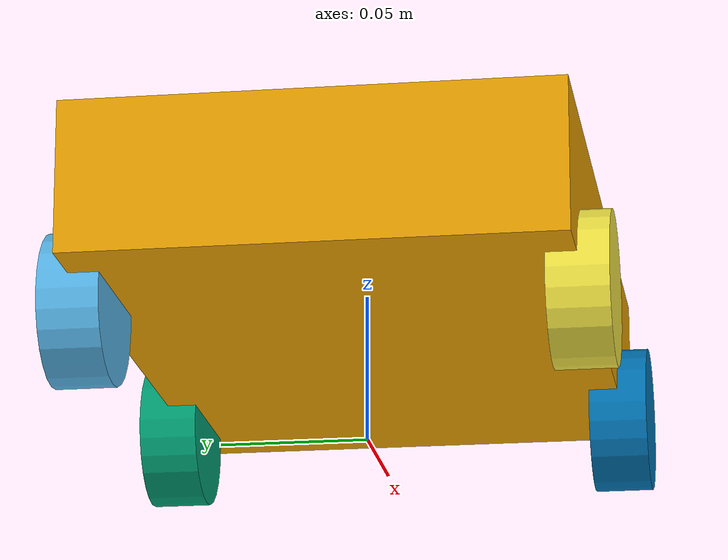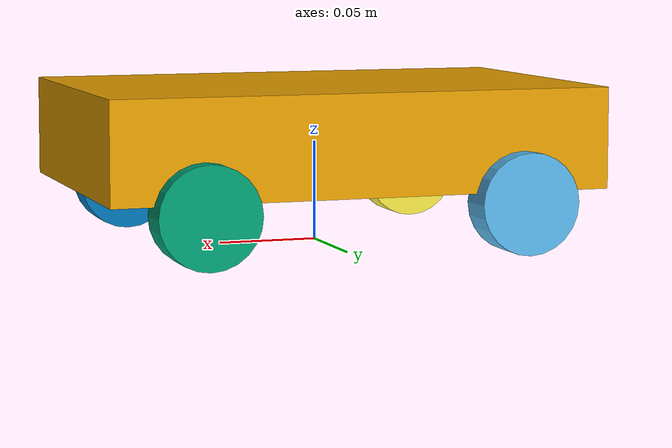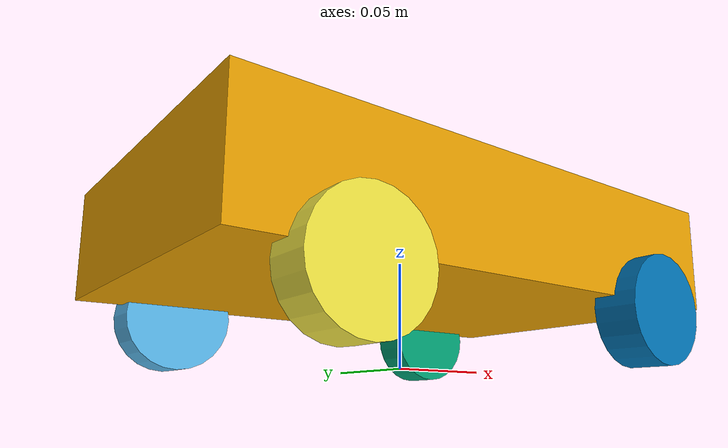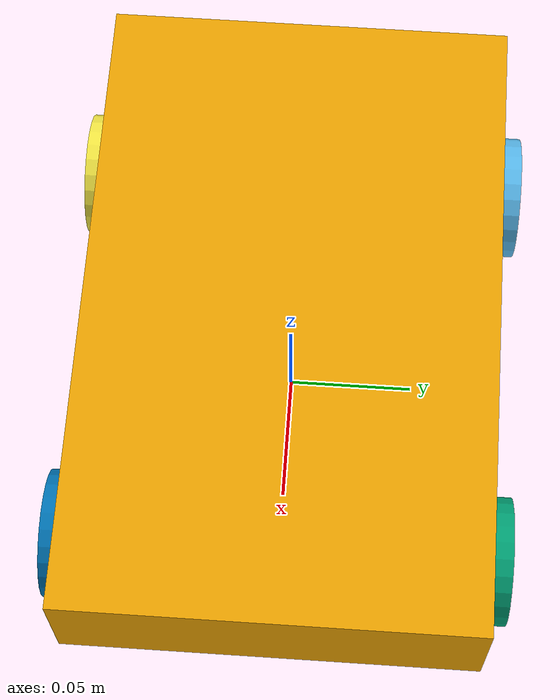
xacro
<robot name="car">
    <!--body-->
    <link name="base_link">
        <visual>
            <origin rpy="0 0 0" xyz="0 0 0.055"/>
            <geometry>
                <box size="0.25 0.16 0.05"/>
            </geometry>
        </visual>
        <inertial>
            <origin xyz="0 0 0.055"/>
            <mass value="100" />
            <inertia ixx="0.1" ixy="0.1" ixz="0.1" iyy="0.1" iyz="0.1" izz="0.1"/>
        </inertial>
        <collision>
            <origin rpy="0 0 0" xyz="0 0 0.055"/>
            <geometry>
                <box size="0.25 0.16 0.05" />
            </geometry>
        </collision>
    </link>
    <!--wheel-->
    <link name="left_back_wheel">
        <visual>
            <geometry>
                <cylinder length="0.02" radius="0.025"/>
            </geometry>
        </visual>
        <inertial>
            <origin xyz="0 0 0"/>
            <mass value="1.0" />
            <inertia ixx="0.1" ixy="0.1" ixz="0.1" iyy="0.1" iyz="0.1" izz="0.1"/>
        </inertial>
        <collision>
            <geometry>
                <cylinder length="0.02" radius="0.025"/>
            </geometry>
        </collision>
    </link>
    <joint name="left_back_wheel_joint" type="continuous">
        <axis xyz="0 0 1"/>
        <parent link="base_link"/>
        <child link="left_back_wheel"/>
        <origin rpy="0 1.57075 1.57075" xyz="-0.08 0.08 0.025"/>
    </joint>

    <link name="left_front_wheel">
        <visual>
            <geometry>
                <cylinder length="0.02" radius="0.025"/>
            </geometry>
        </visual>
        <inertial>
            <origin xyz="0 0 0"/>
            <mass value="1.0" />
            <inertia ixx="0.1" ixy="0.1" ixz="0.1" iyy="0.1" iyz="0.1" izz="0.1"/>
        </inertial>
        <collision>
            <geometry>
                <cylinder length="0.02" radius="0.025"/>
            </geometry>
        </collision>
    </link>
    <joint name="left_front_wheel_joint" type="continuous">
        <axis xyz="0 0 1"/>
        <parent link="base_link"/>
        <child link="left_front_wheel"/>
        <origin rpy="0 1.57075 1.57075" xyz="0.08 0.08 0.025"/>
    </joint>

    <link name="right_back_wheel">
        <visual>
            <geometry>
                <cylinder length="0.02" radius="0.025"/>
            </geometry>
        </visual>
        <inertial>
            <origin xyz="0 0 0"/>
            <mass value="1.0" />
            <inertia ixx="0.1" ixy="0.1" ixz="0.1" iyy="0.1" iyz="0.1" izz="0.1"/>
        </inertial>
        <collision>
            <geometry>
                <cylinder length="0.02" radius="0.025"/>
            </geometry>
        </collision>
    </link>
    <joint name="right_back_wheel_joint" type="continuous">
        <axis xyz="0 0 1"/>
        <parent link="base_link"/>
        <child link="right_back_wheel"/>
        <origin rpy="0 1.57075 1.57075" xyz="-0.08 -0.08 0.025"/>
    </joint>

    <link name="right_front_wheel">
        <visual>
            <geometry>
                <cylinder length="0.02" radius="0.025"/>
            </geometry>
        </visual>
        <inertial>
            <origin xyz="0 0 0"/>
            <mass value="1.0" />
            <inertia ixx="0.1" ixy="0.1" ixz="0.1" iyy="0.1" iyz="0.1" izz="0.1"/>
        </inertial>
        <collision>
            <geometry>
                <cylinder length="0.02" radius="0.025"/>
            </geometry>
        </collision>
    </link>
    <joint name="right_front_wheel_joint" type="continuous">
        <axis xyz="0 0 1"/>
        <parent link="base_link"/>
        <child link="right_front_wheel"/>
        <origin rpy="0 1.57075 1.57075" xyz="0.08 -0.08 0.025"/>
    </joint>

    <transmission name="left_front_wheel_transmission">
        <type>transmission_interface/SimpleTransmission</type>
        <joint name="left_front_wheel_joint">
            <hardwareInterface>hardware_interface/VelocityJointInterface</hardwareInterface>
        </joint>
        <actuator name="left_front_wheel_motor">
            <mechanicalReduction>1</mechanicalReduction>
        </actuator>
    </transmission>

    <transmission name="left_back_wheel_transmission">
        <type>transmission_interface/SimpleTransmission</type>
        <joint name="left_back_wheel_joint">
            <hardwareInterface>hardware_interface/VelocityJointInterface</hardwareInterface>
        </joint>
        <actuator name="left_back_wheel_motor">
            <mechanicalReduction>1</mechanicalReduction>
        </actuator>
    </transmission>

    <transmission name="right_front_wheel_transmission">
        <type>transmission_interface/SimpleTransmission</type>
        <joint name="right_front_wheel_joint">
            <hardwareInterface>hardware_interface/VelocityJointInterface</hardwareInterface>
        </joint>
        <actuator name="right_front_wheel_motor">
            <mechanicalReduction>1</mechanicalReduction>
        </actuator>
    </transmission>

    <transmission name="right_back_wheel_transmission">
        <type>transmission_interface/SimpleTransmission</type>
        <joint name="right_back_wheel_joint">
            <hardwareInterface>hardware_interface/VelocityJointInterface</hardwareInterface>
        </joint>
        <actuator name="right_back_wheel_motor">
            <mechanicalReduction>1</mechanicalReduction>
        </actuator>
    </transmission>

    <gazebo>
        <plugin name="ros_control" filename="libgazebo_ros_control.so">
        </plugin>
    </gazebo>
</robot>
